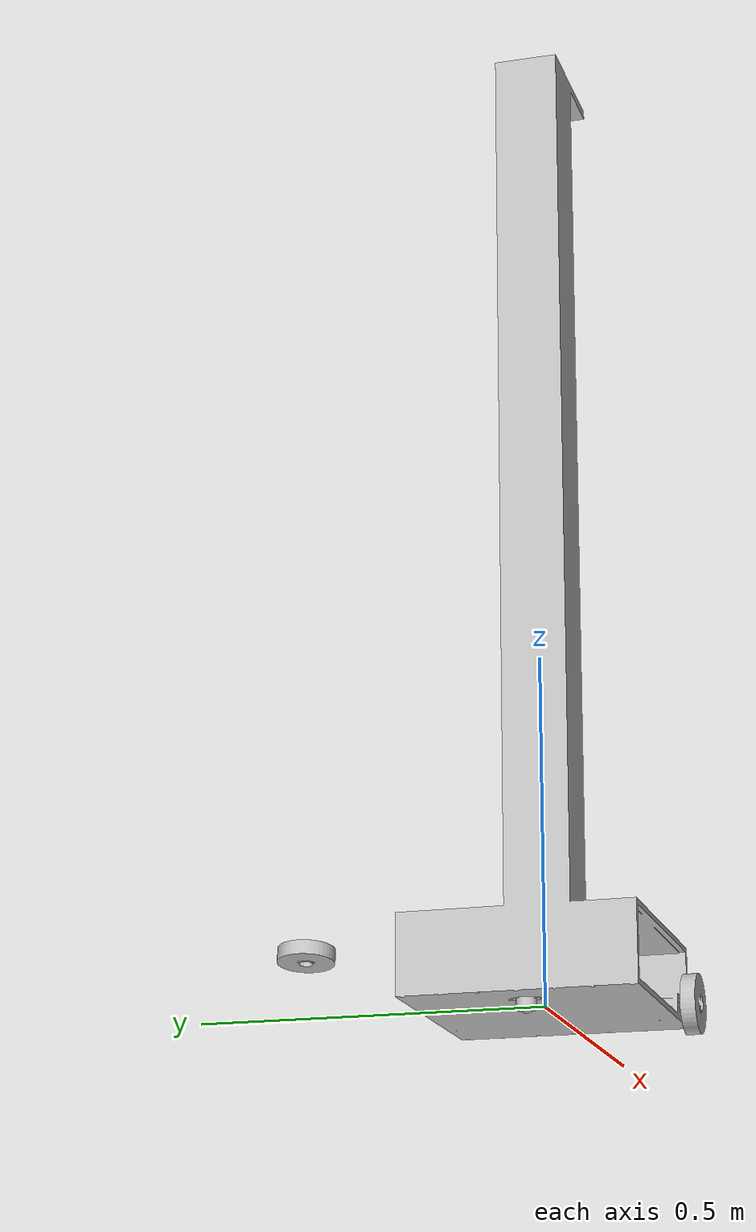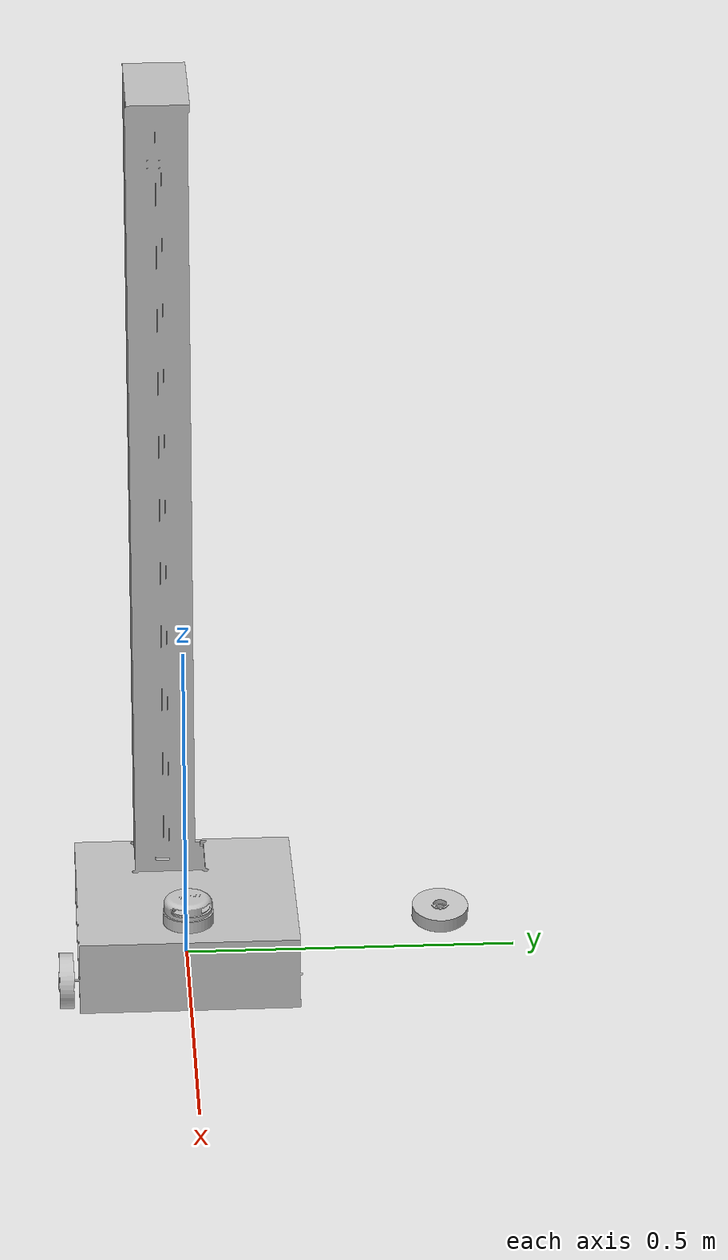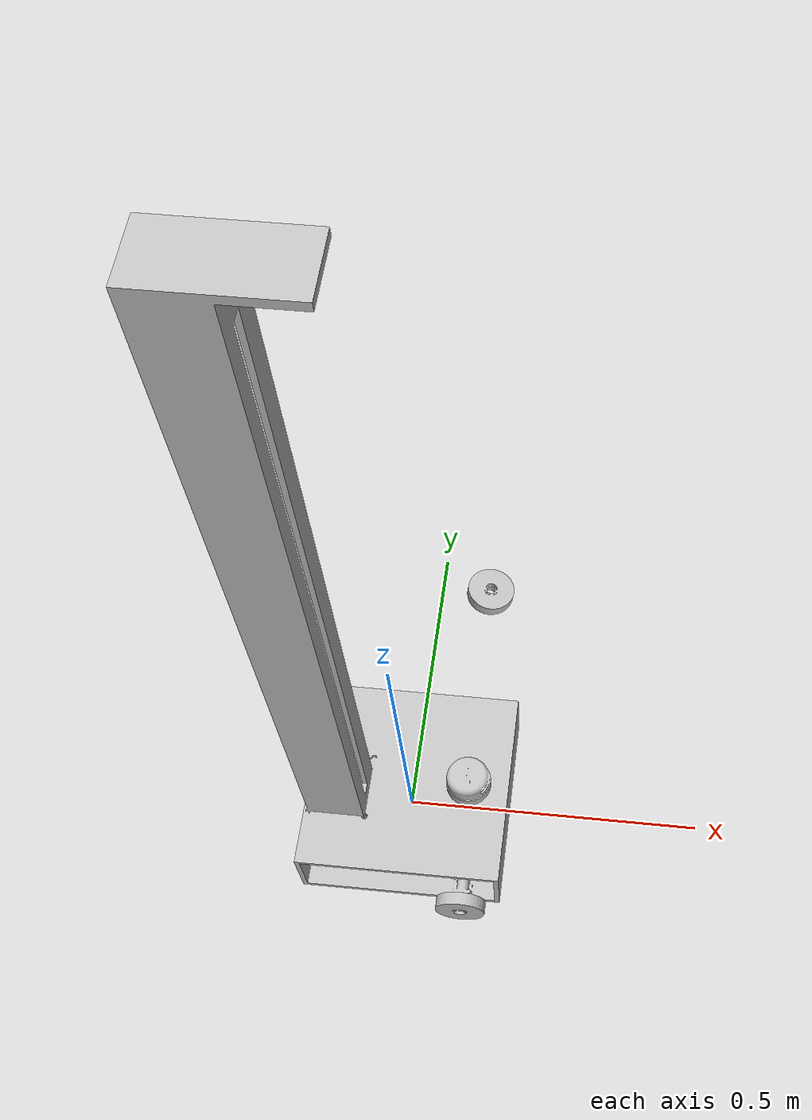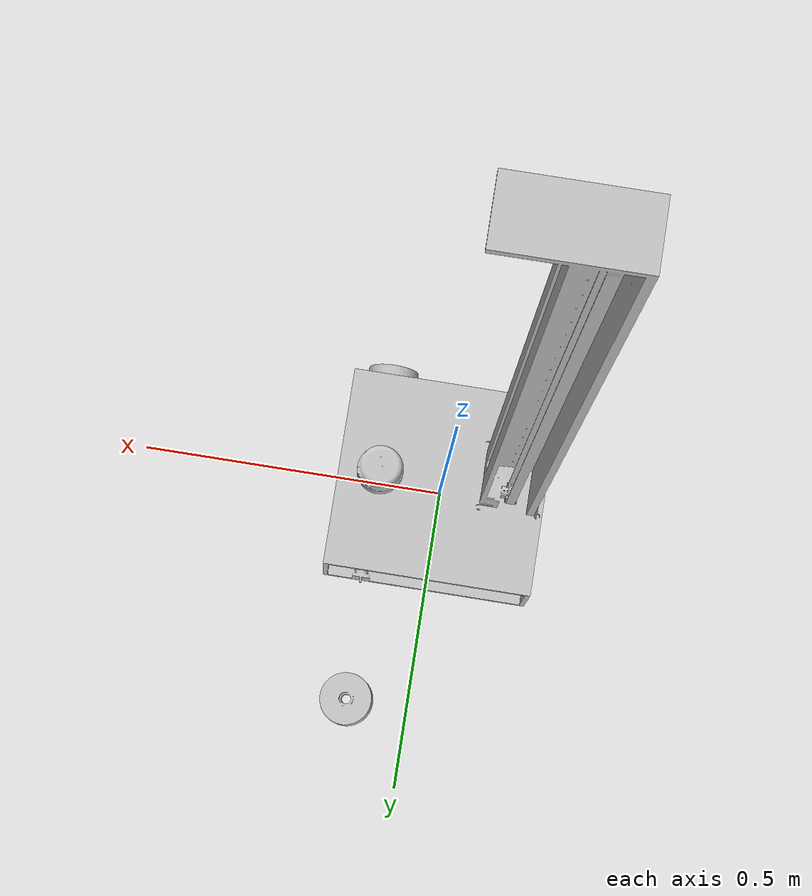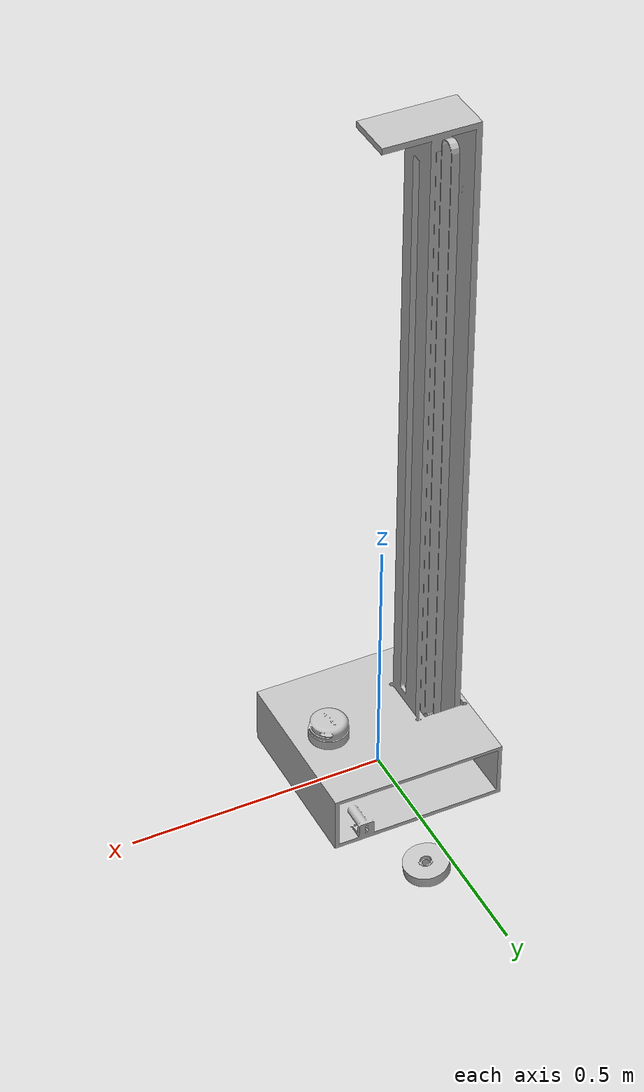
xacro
<?xml version="1.0" encoding="utf-8"?>
<robot name="ssmm_robot" xmlns:xacro="http://www.ros.org/wiki/xacro">
  <xacro:include filename="$(find ssmm_robot)/urdf/ssmm_robot.gazebo"/>
  <link
    name="base_link">
    <inertial>
      <origin
        xyz="-0.069584 -0.024502 0.44053"
        rpy="0 0 0" />
      <mass
        value="6.3015" />
      <inertia
        ixx="0.55585"
        ixy="0.00023242"
        ixz="6.1801E-06"
        iyy="0.55093"
        iyz="-1.7166E-05"
        izz="0.039134" />
    </inertial>
    <visual>
      <origin
        xyz="0 0 0"
        rpy="0 0 0" />
      <geometry>
        <mesh
          filename="file://$(find ssmm_robot)/meshes/base_link.STL" />
      </geometry>
      <material
        name="">
        <color
          rgba="0.75294 0.75294 0.75294 1" />
      </material>
    </visual>
    <collision>
      <origin
        xyz="0 0 0"
        rpy="0 0 0" />
      <geometry>
        <mesh
          filename="file://$(find ssmm_robot)/meshes/base_link.STL" />
      </geometry>
    </collision>
  </link>
  <link
    name="right_wheel">
    <inertial>
      <origin
        xyz="1.3878E-17 0 2.7756E-17"
        rpy="0 0 0" />
      <mass
        value="0.1112" />
      <inertia
        ixx="5.5328E-05"
        ixy="-5.4445E-21"
        ixz="7.4306E-19"
        iyy="5.5328E-05"
        iyz="-2.0017E-21"
        izz="0.00010246" />
    </inertial>
    <visual>
      <origin
        xyz="0 0 0"
        rpy="0 0 0" />
      <geometry>
        <mesh
          filename="file://$(find ssmm_robot)/meshes/right_wheel.STL" />
      </geometry>
      <material
        name="">
        <color
          rgba="0.75294 0.75294 0.75294 1" />
      </material>
    </visual>
    <collision>
      <origin
        xyz="0 0 0"
        rpy="0 0 0" />
      <geometry>
        <mesh
          filename="file://$(find ssmm_robot)/meshes/right_wheel.STL" />
      </geometry>
    </collision>
  </link>
  <joint
    name="base_to_rw"
    type="continuous">
    <origin
      xyz="0.10789 -0.184 0.014"
      rpy="-1.5708 0 -3.1416" />
    <parent
      link="base_link" />
    <child
      link="right_wheel" />
    <axis
      xyz="0 0 1" />
  </joint>
  <link
    name="left_wheel">
    <inertial>
      <origin
        xyz="0 -3.4694E-18 5.5511E-17"
        rpy="0 0 0" />
      <mass
        value="0.1112" />
      <inertia
        ixx="5.5328E-05"
        ixy="-3.0502E-21"
        ixz="-6.2283E-19"
        iyy="5.5328E-05"
        iyz="-3.8342E-21"
        izz="0.00010246" />
    </inertial>
    <visual>
      <origin
        xyz="0 0 0"
        rpy="0 0 0" />
      <geometry>
        <mesh
          filename="file://$(find ssmm_robot)/meshes/left_wheel.STL" />
      </geometry>
      <material
        name="">
        <color
          rgba="0.75294 0.75294 0.75294 1" />
      </material>
    </visual>
    <collision>
      <origin
        xyz="0 0 0"
        rpy="0 0 0" />
      <geometry>
        <mesh
          filename="file://$(find ssmm_robot)/meshes/left_wheel.STL" />
      </geometry>
    </collision>
  </link>
  <joint
    name="base_to_lw"
    type="continuous">
    <origin
      xyz="0.10789 0.184 0.014"
      rpy="1.5708 0 3.1416" />
    <parent
      link="base_link" />
    <child
      link="left_wheel" />
    <axis
      xyz="0 0 1" />
  </joint>
  <link
    name="lidar">
    <inertial>
      <origin
        xyz="-0.00093409 -0.00025709 0.0097851"
        rpy="0 0 0" />
      <mass
        value="0.16306" />
      <inertia
        ixx="6.0726E-05"
        ixy="1.1E-07"
        ixz="-2.3221E-07"
        iyy="6.0437E-05"
        iyz="-6.5607E-08"
        izz="0.00010759" />
    </inertial>
    <visual>
      <origin
        xyz="0 0 0"
        rpy="0 0 0" />
      <geometry>
        <mesh
          filename="file://$(find ssmm_robot)/meshes/lidar.STL" />
      </geometry>
      <material
        name="">
        <color
          rgba="0.75294 0.75294 0.75294 1" />
      </material>
    </visual>
    <collision>
      <origin
        xyz="0 0 0"
        rpy="0 0 0" />
      <geometry>
        <mesh
          filename="file://$(find ssmm_robot)/meshes/lidar.STL" />
      </geometry>
    </collision>
  </link>
  <joint
    name="base_to_lidar"
    type="fixed">
    <origin
      xyz="0.10389 0 0.1153"
      rpy="0 0 0" />
    <parent
      link="base_link" />
    <child
      link="lidar" />
    <axis
      xyz="0 0 0" />
  </joint>
  <link
    name="caster">
    <inertial>
      <origin
        xyz="8.1068E-08 -9.9573E-09 0.010191"
        rpy="0 0 0" />
      <mass
        value="0.010413" />
      <inertia
        ixx="8.069E-07"
        ixy="-1.1282E-11"
        ixz="-6.6095E-12"
        iyy="7.4592E-07"
        iyz="1.0936E-11"
        izz="1.0475E-06" />
    </inertial>
    <visual>
      <origin
        xyz="0 0 0"
        rpy="0 0 0" />
      <geometry>
        <mesh
          filename="file://$(find ssmm_robot)/meshes/caster.STL" />
      </geometry>
      <material
        name="">
        <color
          rgba="0.75294 0.75294 0.75294 1" />
      </material>
    </visual>
    <collision>
      <origin
        xyz="0 0 0"
        rpy="0 0 0" />
      <geometry>
        <mesh
          filename="file://$(find ssmm_robot)/meshes/caster.STL" />
      </geometry>
    </collision>
  </link>
  <joint
    name="base_to_caster"
    type="fixed">
    <origin
      xyz="-0.10811 0 -0.026223"
      rpy="0 0 0" />
    <parent
      link="base_link" />
    <child
      link="caster" />
    <axis
      xyz="0 0 0" />
  </joint>
</robot>
